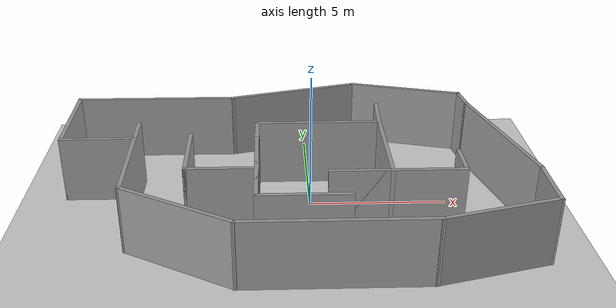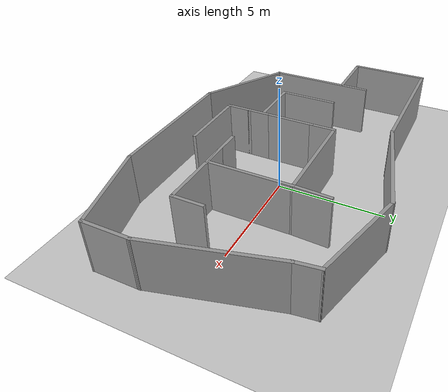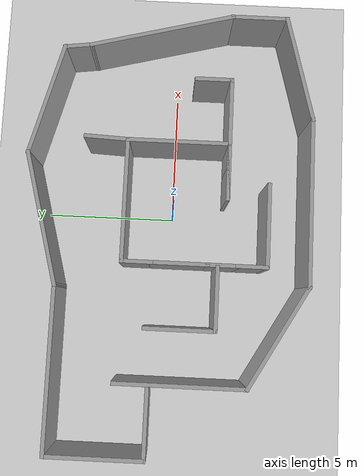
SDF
<sdf version="1.7">
 <world name="default">
  <include><uri>model://sun</uri></include>
  <include><uri>model://ground_plane</uri></include>
  <light name="sun" type="directional">
   <pose>0 0 10 0 -0 0</pose>
   <diffuse>0.8 0.8 0.8 1</diffuse>
   <specular>0.2 0.2 0.2 1</specular>
   <attenuation>
    <range>1000</range>
    <constant>0.9</constant>
    <linear>0.01</linear>
    <quadratic>0.001</quadratic>
   </attenuation>
   <direction>-0.5 0.1 -0.9</direction>
   <spot><inner_angle>0</inner_angle><outer_angle>0</outer_angle><falloff>0</falloff></spot>
  </light>
  <model name="ground_plane">
   <static>1</static>
   <link name="link">
    <collision name="collision">
     <geometry><plane><normal>0 0 1</normal><size>100 100</size></plane></geometry>
     <surface><friction><ode><mu>100</mu><mu2>50</mu2></ode></friction></surface>
    </collision>
    <visual name="visual">
     <cast_shadows>0</cast_shadows>
     <geometry><plane><normal>0 0 1</normal><size>100 100</size></plane></geometry>
     <material>
      <script><uri>file://media/materials/scripts/gazebo.material</uri><name>Gazebo/Grey</name></script>
     </material>
    </visual>
   </link>
  </model>
  <gravity>0 0 -9.8</gravity>
  <magnetic_field>6e-06 2.3e-05 -4.2e-05</magnetic_field>
  <atmosphere type="adiabatic"/>
  <physics type="ode">
   <max_step_size>0.001</max_step_size>
   <real_time_factor>1</real_time_factor>
   <real_time_update_rate>1000</real_time_update_rate>
  </physics>
  <scene><ambient>0.4 0.4 0.4 1</ambient><background>0.7 0.7 0.7 1</background><shadows>1</shadows></scene>
  <audio><device>default</device></audio>
  <spherical_coordinates>
   <surface_model>EARTH_WGS84</surface_model>
   <latitude_deg>0</latitude_deg>
   <longitude_deg>0</longitude_deg>
   <elevation>0</elevation>
   <heading_deg>0</heading_deg>
  </spherical_coordinates>
  <model name="peta_1">
   <pose>-0.625019 0.206736 0 0 -0 0</pose>
   <link name="Wall_0">
    <collision name="Wall_0_Collision">
     <geometry><box><size>1.25 0.15 2.5</size></box></geometry>
     <pose>0 0 1.25 0 -0 0</pose>
    </collision>
    <visual name="Wall_0_Visual">
     <pose>0 0 1.25 0 -0 0</pose>
     <geometry><box><size>1.25 0.15 2.5</size></box></geometry>
     <material>
      <script><uri>file://media/materials/scripts/gazebo.material</uri><name>Gazebo/Grey</name></script>
      <ambient>1 1 1 1</ambient>
     </material>
     <meta><layer>0</layer></meta>
    </visual>
    <pose>-1.29031 -2.12725 0 0 -0 1.5708</pose>
   </link>
   <link name="Wall_11">
    <collision name="Wall_11_Collision">
     <geometry><box><size>1.25 0.15 2.5</size></box></geometry>
     <pose>0 0 1.25 0 -0 0</pose>
    </collision>
    <visual name="Wall_11_Visual">
     <pose>0 0 1.25 0 -0 0</pose>
     <geometry><box><size>1.25 0.15 2.5</size></box></geometry>
     <material>
      <script><uri>file://media/materials/scripts/gazebo.material</uri><name>Gazebo/Grey</name></script>
      <ambient>1 1 1 1</ambient>
     </material>
     <meta><layer>0</layer></meta>
    </visual>
    <pose>-1.29031 -3.22725 0 0 -0 -1.5708</pose>
   </link>
   <link name="Wall_12">
    <collision name="Wall_12_Collision">
     <geometry><box><size>3.25 0.15 2.5</size></box></geometry>
     <pose>0 0 1.25 0 -0 0</pose>
    </collision>
    <visual name="Wall_12_Visual">
     <pose>0 0 1.25 0 -0 0</pose>
     <geometry><box><size>3.25 0.15 2.5</size></box></geometry>
     <material>
      <script><uri>file://media/materials/scripts/gazebo.material</uri><name>Gazebo/Grey</name></script>
      <ambient>1 1 1 1</ambient>
     </material>
     <meta><layer>0</layer></meta>
    </visual>
    <pose>0.259686 -3.77725 0 0 -0 0</pose>
   </link>
   <link name="Wall_14">
    <collision name="Wall_14_Collision">
     <geometry><box><size>2.5 0.15 2.5</size></box></geometry>
     <pose>0 0 1.25 0 -0 0</pose>
    </collision>
    <visual name="Wall_14_Visual">
     <pose>0 0 1.25 0 -0 0</pose>
     <geometry><box><size>2.5 0.15 2.5</size></box></geometry>
     <material>
      <script><uri>file://media/materials/scripts/gazebo.material</uri><name>Gazebo/Grey</name></script>
      <ambient>1 1 1 1</ambient>
     </material>
     <meta><layer>0</layer></meta>
    </visual>
    <pose>-2.53298 -1.94424 0 0 -0 3.14159</pose>
   </link>
   <link name="Wall_15">
    <collision name="Wall_15_Collision">
     <geometry><box><size>2.75 0.15 2.5</size></box></geometry>
     <pose>0 0 1.25 0 -0 0</pose>
    </collision>
    <visual name="Wall_15_Visual">
     <pose>0 0 1.25 0 -0 0</pose>
     <geometry><box><size>2.75 0.15 2.5</size></box></geometry>
     <material>
      <script><uri>file://media/materials/scripts/gazebo.material</uri><name>Gazebo/Grey</name></script>
      <ambient>1 1 1 1</ambient>
     </material>
     <meta><layer>0</layer></meta>
    </visual>
    <pose>-3.70798 -0.644237 0 0 -0 1.5708</pose>
   </link>
   <link name="Wall_17">
    <collision name="Wall_17_Collision">
     <geometry><box><size>1.7515 0.15 2.5</size></box></geometry>
     <pose>0 0 1.25 0 -0 0</pose>
    </collision>
    <visual name="Wall_17_Visual">
     <pose>0 0 1.25 0 -0 0</pose>
     <geometry><box><size>1.7515 0.15 2.5</size></box></geometry>
     <material>
      <script><uri>file://media/materials/scripts/gazebo.material</uri><name>Gazebo/Grey</name></script>
      <ambient>1 1 1 1</ambient>
     </material>
     <meta><layer>0</layer></meta>
    </visual>
    <pose>3.34438 2.42275 0 0 -0 1.52745</pose>
   </link>
   <link name="Wall_19">
    <collision name="Wall_19_Collision">
     <geometry><box><size>5.73244 0.15 2.5</size></box></geometry>
     <pose>0 0 1.25 0 -0 0</pose>
    </collision>
    <visual name="Wall_19_Visual">
     <pose>0 0 1.25 0 -0 0</pose>
     <geometry><box><size>5.73244 0.15 2.5</size></box></geometry>
     <material>
      <script><uri>file://media/materials/scripts/gazebo.material</uri><name>Gazebo/Grey</name></script>
      <ambient>1 1 1 1</ambient>
     </material>
     <meta><layer>0</layer></meta>
    </visual>
    <pose>7.66908 0.518153 0 0 -0 -1.321</pose>
   </link>
   <link name="Wall_20">
    <collision name="Wall_20_Collision">
     <geometry><box><size>2.25 0.15 2.5</size></box></geometry>
     <pose>0 0 1.25 0 -0 0</pose>
    </collision>
    <visual name="Wall_20_Visual">
     <pose>0 0 1.25 0 -0 0</pose>
     <geometry><box><size>2.25 0.15 2.5</size></box></geometry>
     <material>
      <script><uri>file://media/materials/scripts/gazebo.material</uri><name>Gazebo/Grey</name></script>
      <ambient>1 1 1 1</ambient>
     </material>
     <meta><layer>0</layer></meta>
    </visual>
    <pose>8.35907 -3.23644 0 0 -0 -1.5708</pose>
   </link>
   <link name="Wall_21">
    <collision name="Wall_21_Collision">
     <geometry><box><size>4.25 0.15 2.5</size></box></geometry>
     <pose>0 0 1.25 0 -0 0</pose>
    </collision>
    <visual name="Wall_21_Visual">
     <pose>0 0 1.25 0 -0 0</pose>
     <geometry><box><size>4.25 0.15 2.5</size></box></geometry>
     <material>
      <script><uri>file://media/materials/scripts/gazebo.material</uri><name>Gazebo/Grey</name></script>
      <ambient>1 1 1 1</ambient>
     </material>
     <meta><layer>0</layer></meta>
    </visual>
    <pose>6.37892 -4.81702 0 0 -0 -2.87979</pose>
   </link>
   <link name="Wall_22">
    <collision name="Wall_22_Collision">
     <geometry><box><size>6.5 0.15 2.5</size></box></geometry>
     <pose>0 0 1.25 0 -0 0</pose>
    </collision>
    <visual name="Wall_22_Visual">
     <pose>0 0 1.25 0 -0 0</pose>
     <geometry><box><size>6.5 0.15 2.5</size></box></geometry>
     <material>
      <script><uri>file://media/materials/scripts/gazebo.material</uri><name>Gazebo/Grey</name></script>
      <ambient>1 1 1 1</ambient>
     </material>
     <meta><layer>0</layer></meta>
    </visual>
    <pose>1.22378 -5.3476 0 0 -0 3.14159</pose>
   </link>
   <link name="Wall_23">
    <collision name="Wall_23_Collision">
     <geometry><box><size>4.5 0.15 2.5</size></box></geometry>
     <pose>0 0 1.25 0 -0 0</pose>
    </collision>
    <visual name="Wall_23_Visual">
     <pose>0 0 1.25 0 -0 0</pose>
     <geometry><box><size>4.5 0.15 2.5</size></box></geometry>
     <material>
      <script><uri>file://media/materials/scripts/gazebo.material</uri><name>Gazebo/Grey</name></script>
      <ambient>1 1 1 1</ambient>
     </material>
     <meta><layer>0</layer></meta>
    </visual>
    <pose>-3.83483 -4.2601 0 0 -0 2.61799</pose>
   </link>
   <link name="Wall_24">
    <collision name="Wall_24_Collision">
     <geometry><box><size>5 0.15 2.5</size></box></geometry>
     <pose>0 0 1.25 0 -0 0</pose>
    </collision>
    <visual name="Wall_24_Visual">
     <pose>0 0 1.25 0 -0 0</pose>
     <geometry><box><size>5 0.15 2.5</size></box></geometry>
     <material>
      <script><uri>file://media/materials/scripts/gazebo.material</uri><name>Gazebo/Grey</name></script>
      <ambient>1 1 1 1</ambient>
     </material>
     <meta><layer>0</layer></meta>
    </visual>
    <pose>-5.71843 -0.747597 0 0 -0 1.5708</pose>
   </link>
   <link name="Wall_26">
    <collision name="Wall_26_Collision">
     <geometry><box><size>2.75 0.15 2.5</size></box></geometry>
     <pose>0 0 1.25 0 -0 0</pose>
    </collision>
    <visual name="Wall_26_Visual">
     <pose>0 0 1.25 0 -0 0</pose>
     <geometry><box><size>2.75 0.15 2.5</size></box></geometry>
     <material>
      <script><uri>file://media/materials/scripts/gazebo.material</uri><name>Gazebo/Grey</name></script>
      <ambient>1 1 1 1</ambient>
     </material>
     <meta><layer>0</layer></meta>
    </visual>
    <pose>-7.07593 0.438216 0 0 -0 3.14159</pose>
   </link>
   <link name="Wall_27">
    <collision name="Wall_27_Collision">
     <geometry><box><size>3.75 0.15 2.5</size></box></geometry>
     <pose>0 0 1.25 0 -0 0</pose>
    </collision>
    <visual name="Wall_27_Visual">
     <pose>0 0 1.25 0 -0 0</pose>
     <geometry><box><size>3.75 0.15 2.5</size></box></geometry>
     <material>
      <script><uri>file://media/materials/scripts/gazebo.material</uri><name>Gazebo/Grey</name></script>
      <ambient>1 1 1 1</ambient>
     </material>
     <meta><layer>0</layer></meta>
    </visual>
    <pose>-8.37593 2.23822 0 0 -0 1.5708</pose>
   </link>
   <link name="Wall_28">
    <collision name="Wall_28_Collision">
     <geometry><box><size>6.25 0.15 2.5</size></box></geometry>
     <pose>0 0 1.25 0 -0 0</pose>
    </collision>
    <visual name="Wall_28_Visual">
     <pose>0 0 1.25 0 -0 0</pose>
     <geometry><box><size>6.25 0.15 2.5</size></box></geometry>
     <material>
      <script><uri>file://media/materials/scripts/gazebo.material</uri><name>Gazebo/Grey</name></script>
      <ambient>1 1 1 1</ambient>
     </material>
     <meta><layer>0</layer></meta>
    </visual>
    <pose>-5.32593 4.03822 0 0 -0 0</pose>
   </link>
   <link name="Wall_29">
    <collision name="Wall_29_Collision">
     <geometry><box><size>5.25 0.15 2.5</size></box></geometry>
     <pose>0 0 1.25 0 -0 0</pose>
    </collision>
    <visual name="Wall_29_Visual">
     <pose>0 0 1.25 0 -0 0</pose>
     <geometry><box><size>5.25 0.15 2.5</size></box></geometry>
     <material>
      <script><uri>file://media/materials/scripts/gazebo.material</uri><name>Gazebo/Grey</name></script>
      <ambient>1 1 1 1</ambient>
     </material>
     <meta><layer>0</layer></meta>
    </visual>
    <pose>0.187182 4.6982 0 0 -0 0.261799</pose>
   </link>
   <link name="Wall_3">
    <collision name="Wall_3_Collision">
     <geometry><box><size>2.25 0.15 2.5</size></box></geometry>
     <pose>0 0 1.25 0 -0 0</pose>
    </collision>
    <visual name="Wall_3_Visual">
     <pose>0 0 1.25 0 -0 0</pose>
     <geometry><box><size>2.25 0.15 2.5</size></box></geometry>
     <material>
      <script><uri>file://media/materials/scripts/gazebo.material</uri><name>Gazebo/Grey</name></script>
      <ambient>1 1 1 1</ambient>
     </material>
     <meta><layer>0</layer></meta>
    </visual>
    <pose>-1.29031 -0.527254 0 0 -0 1.5708</pose>
   </link>
   <link name="Wall_30">
    <collision name="Wall_30_Collision">
     <geometry><box><size>4.5 0.15 2.5</size></box></geometry>
     <pose>0 0 1.25 0 -0 0</pose>
    </collision>
    <visual name="Wall_30_Visual">
     <pose>0 0 1.25 0 -0 0</pose>
     <geometry><box><size>4.5 0.15 2.5</size></box></geometry>
     <material>
      <script><uri>file://media/materials/scripts/gazebo.material</uri><name>Gazebo/Grey</name></script>
      <ambient>1 1 1 1</ambient>
     </material>
     <meta><layer>0</layer></meta>
    </visual>
    <pose>4.75118 4.79526 0 0 -0 -0.261799</pose>
   </link>
   <link name="Wall_31">
    <collision name="Wall_31_Collision">
     <geometry><box><size>1.16754 0.15 2.5</size></box></geometry>
     <pose>0 0 1.25 0 -0 0</pose>
    </collision>
    <visual name="Wall_31_Visual">
     <pose>0 0 1.25 0 -0 0</pose>
     <geometry><box><size>1.16754 0.15 2.5</size></box></geometry>
     <material>
      <script><uri>file://media/materials/scripts/gazebo.material</uri><name>Gazebo/Grey</name></script>
      <ambient>1 1 1 1</ambient>
     </material>
     <meta><layer>0</layer></meta>
    </visual>
    <pose>6.91557 3.72754 0 0 -0 -1.44565</pose>
   </link>
   <link name="Wall_4">
    <collision name="Wall_4_Collision">
     <geometry><box><size>1.25 0.15 2.5</size></box></geometry>
     <pose>0 0 1.25 0 -0 0</pose>
    </collision>
    <visual name="Wall_4_Visual">
     <pose>0 0 1.25 0 -0 0</pose>
     <geometry><box><size>1.25 0.15 2.5</size></box></geometry>
     <material>
      <script><uri>file://media/materials/scripts/gazebo.material</uri><name>Gazebo/Grey</name></script>
      <ambient>1 1 1 1</ambient>
     </material>
     <meta><layer>0</layer></meta>
    </visual>
    <pose>-1.29031 1.07275 0 0 -0 1.5708</pose>
   </link>
   <link name="Wall_5">
    <collision name="Wall_5_Collision">
     <geometry><box><size>4.75 0.15 2.5</size></box></geometry>
     <pose>0 0 1.25 0 -0 0</pose>
    </collision>
    <visual name="Wall_5_Visual">
     <pose>0 0 1.25 0 -0 0</pose>
     <geometry><box><size>4.75 0.15 2.5</size></box></geometry>
     <material>
      <script><uri>file://media/materials/scripts/gazebo.material</uri><name>Gazebo/Grey</name></script>
      <ambient>1 1 1 1</ambient>
     </material>
     <meta><layer>0</layer></meta>
    </visual>
    <pose>1.00969 1.62275 0 0 -0 0</pose>
   </link>
   <link name="Wall_6">
    <collision name="Wall_6_Collision">
     <geometry><box><size>4 0.15 2.5</size></box></geometry>
     <pose>0 0 1.25 0 -0 0</pose>
    </collision>
    <visual name="Wall_6_Visual">
     <pose>0 0 1.25 0 -0 0</pose>
     <geometry><box><size>4 0.15 2.5</size></box></geometry>
     <material>
      <script><uri>file://media/materials/scripts/gazebo.material</uri><name>Gazebo/Grey</name></script>
      <ambient>1 1 1 1</ambient>
     </material>
     <meta><layer>0</layer></meta>
    </visual>
    <pose>3.30968 -0.302254 0 0 -0 -1.5708</pose>
   </link>
   <link name="Wall_7">
    <collision name="Wall_7_Collision">
     <geometry><box><size>2.25 0.15 2.5</size></box></geometry>
     <pose>0 0 1.25 0 -0 0</pose>
    </collision>
    <visual name="Wall_7_Visual">
     <pose>0 0 1.25 0 -0 0</pose>
     <geometry><box><size>2.25 0.15 2.5</size></box></geometry>
     <material>
      <script><uri>file://media/materials/scripts/gazebo.material</uri><name>Gazebo/Grey</name></script>
      <ambient>1 1 1 1</ambient>
     </material>
     <meta><layer>0</layer></meta>
    </visual>
    <pose>2.25969 -2.22725 0 0 -0 3.14159</pose>
   </link>
   <link name="Wall_8">
    <collision name="Wall_8_Collision">
     <geometry><box><size>4.75 0.15 2.5</size></box></geometry>
     <pose>0 0 1.25 0 -0 0</pose>
    </collision>
    <visual name="Wall_8_Visual">
     <pose>0 0 1.25 0 -0 0</pose>
     <geometry><box><size>4.75 0.15 2.5</size></box></geometry>
     <material>
      <script><uri>file://media/materials/scripts/gazebo.material</uri><name>Gazebo/Grey</name></script>
      <ambient>1 1 1 1</ambient>
     </material>
     <meta><layer>0</layer></meta>
    </visual>
    <pose>3.50969 -2.22725 0 0 -0 0</pose>
   </link>
   <link name="Wall_9">
    <collision name="Wall_9_Collision">
     <geometry><box><size>1.5 0.15 2.5</size></box></geometry>
     <pose>0 0 1.25 0 -0 0</pose>
    </collision>
    <visual name="Wall_9_Visual">
     <pose>0 0 1.25 0 -0 0</pose>
     <geometry><box><size>1.5 0.15 2.5</size></box></geometry>
     <material>
      <script><uri>file://media/materials/scripts/gazebo.material</uri><name>Gazebo/Grey</name></script>
      <ambient>1 1 1 1</ambient>
     </material>
     <meta><layer>0</layer></meta>
    </visual>
    <pose>5.80969 -1.55225 0 0 -0 1.5708</pose>
   </link>
   <static>1</static>
  </model>
  <plugin name="gazebo_ros_factory" filename="libgazebo_ros_factory.so"/>
  <plugin name="gazebo_ros_state" filename="libgazebo_ros_state.so"/>
 </world>
</sdf>
